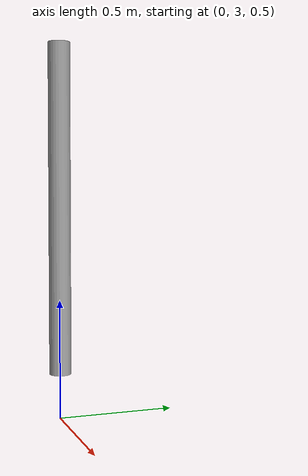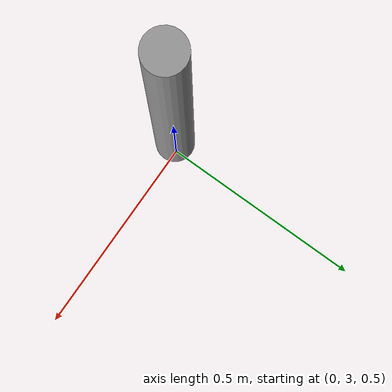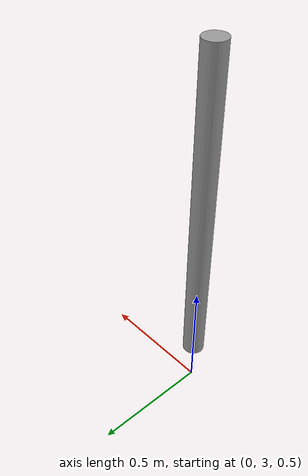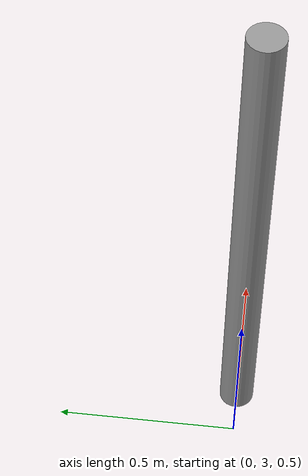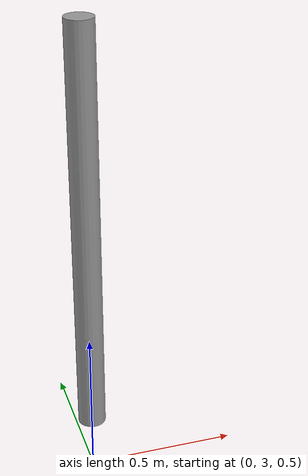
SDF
<?xml version="1.0" ?>
<sdf version="1.5">
<model name="unit_cylinder_1">
  <pose>0.0 3.0 1.38235 0.0 0.0 0.0</pose>
  <static>1</static>
  <link name="link">
    <kinematic>0</kinematic>
    <inertial>
      <mass>1</mass>
      <inertia>
	<ixz>0</ixz>
	<ixx>1</ixx>
	<ixy>0</ixy>
	<izz>1</izz>
	<iyy>1</iyy>
	<iyz>0</iyz>
      </inertia>
    </inertial>
    <self_collide>0</self_collide>
    <gravity>1</gravity>
    <collision name="collision">
      <geometry>
	<cylinder>
	  <length>1.38235</length>
	  <radius>0.0456111</radius>
      </cylinder>
      </geometry>
      <max_contacts>10</max_contacts>
      <surface>
	<contact>
	  <ode></ode>
	</contact>
	<friction>
	  <ode></ode>
	</friction>
	<bounce></bounce>
      </surface>
    </collision>
    <visual name="visual">
      <geometry>
	<cylinder>
	  <length>1.38235</length>
	  <radius>0.0456111</radius>
	</cylinder>
      </geometry>
      <material>
	<script>
	  <uri>file://media/materials/scripts/gazebo.material</uri>
	  <name>Gazebo/Grey</name>
	</script>
      </material>
    </visual>
    <velocity_decay>
      <linear>0</linear>
      <angular>0</angular>
    </velocity_decay>
  </link>
</model>
</sdf>
